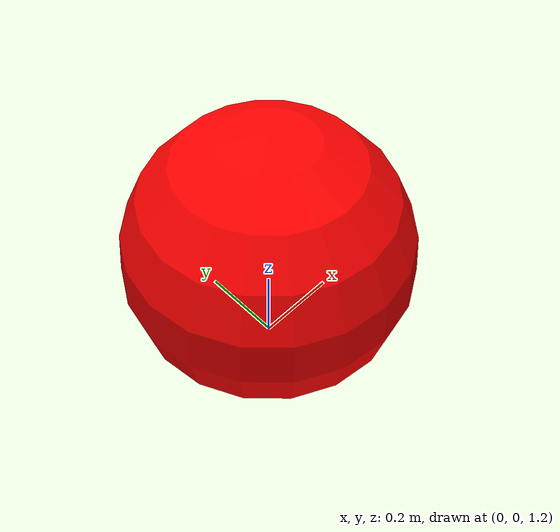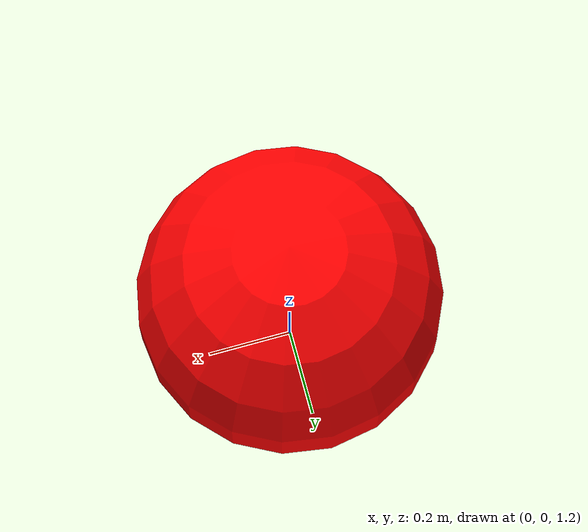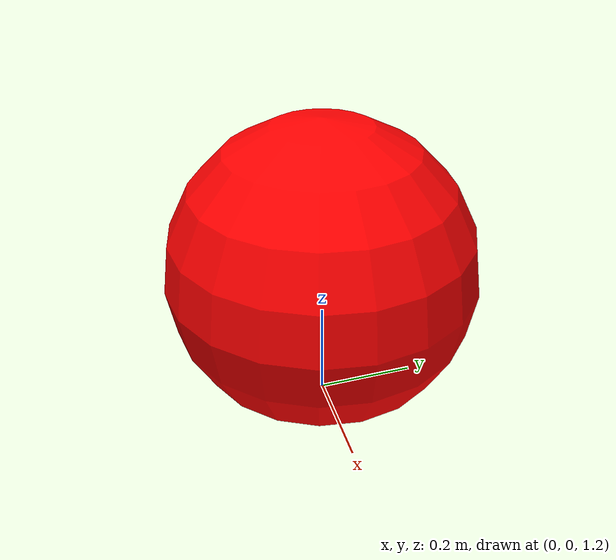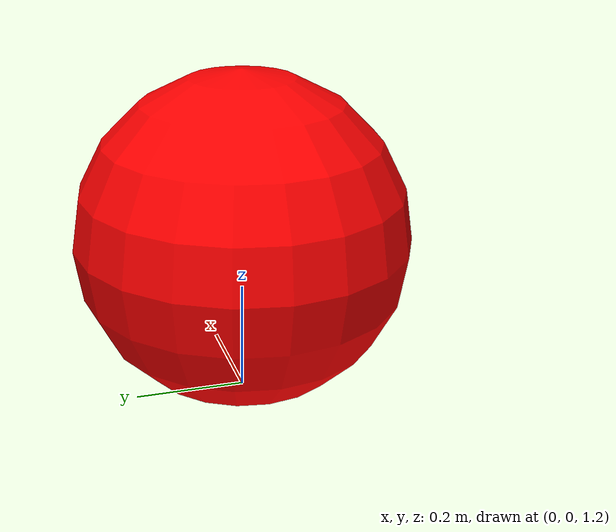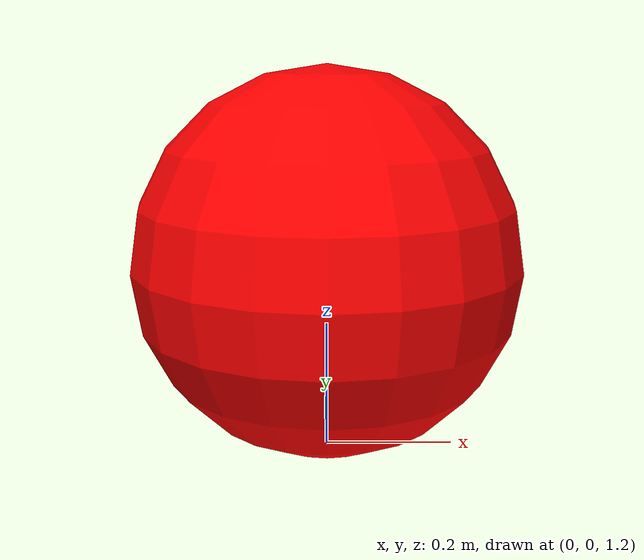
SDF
<?xml version="1.0"?>
<sdf version="1.6">
  <model name="red_balloon">
    <static>false</static>
    <link name="balloon_link">
      <pose>0 0 1.5 0 0 0</pose>
      <kinematic>true</kinematic>
      <inertial>
        <mass>0.01</mass>
        <inertia>
          <ixx>0.0001</ixx>
          <ixy>0</ixy>
          <ixz>0</ixz>
          <iyy>0.0001</iyy>
          <iyz>0</iyz>
          <izz>0.0001</izz>
        </inertia>
      </inertial>
      <collision name="balloon_collision">
        <geometry>
          <sphere>
            <radius>0.3</radius>
          </sphere>
        </geometry>
        <surface>
          <contact>
            <collide_bitmask>0x01</collide_bitmask>
          </contact>
        </surface>
      </collision>
      <visual name="balloon_visual">
        <geometry>
          <sphere>
            <radius>0.3</radius>
          </sphere>
        </geometry>
        <material>
          <ambient>1 0 0 1</ambient>
          <diffuse>1 0 0 1</diffuse>
          <specular>0.5 0.5 0.5 1</specular>
        </material>
      </visual>
    </link>
    <plugin name="balloon_collision_detector" filename="libballoon_collision_plugin.so">
      <balloon_name>red_balloon</balloon_name>
    </plugin>
  </model>
</sdf>
